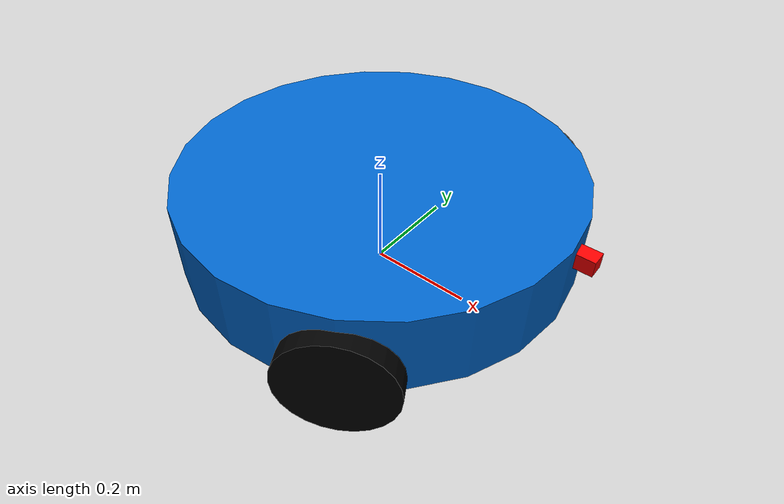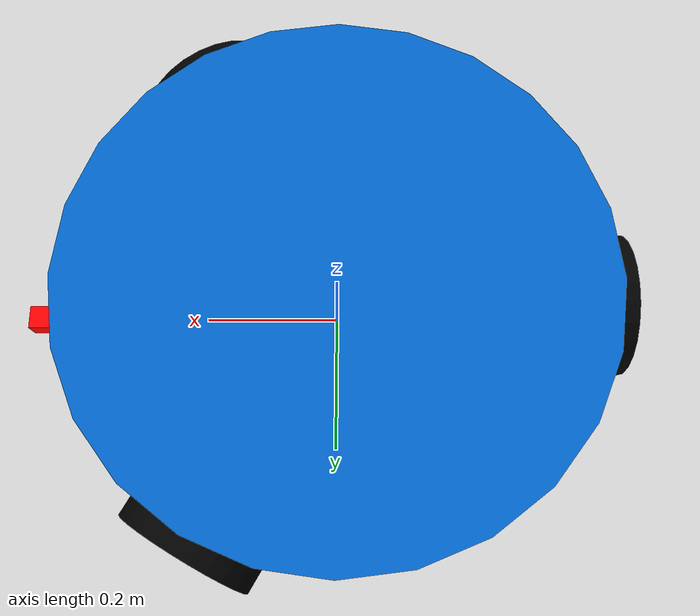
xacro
<?xml version="1.0"?>
<robot xmlns:xacro="http://www.ros.org/wiki/xacro" name="omnibot">

  <!-- This is the main URDF file that calls on all of our URDF components -->
  <!-- Global Color Definitions -->
  <material name="blue">
    <color rgba="0.0 0.4 0.8 1.0" />
  </material>
  <material name="red">
    <color rgba="1.0 0.0 0.0 0.0" />
  </material>

  <material name="black">
    <color rgba="0.0 0.0 0.0 1.0" />
  </material>

  <!-- Include statements to inject all of our URDF components -->
  <xacro:include filename="$(find omnibot_description)/urdf/mech/inertials.urdf.xacro" />
  <xacro:include filename="$(find omnibot_description)/urdf/mech/omnibot_base.urdf.xacro" />
  <xacro:include filename="$(find omnibot_description)/urdf/sensors/lidar.urdf.xacro" />
  <xacro:include filename="$(find omnibot_description)/urdf/sensors/camera.urdf.xacro" />
  <xacro:include filename="$(find omnibot_description)/urdf/control/ros2_control.urdf.xacro" />
  <xacro:include filename="$(find omnibot_description)/urdf/control/gazebo_plugin.urdf.xacro" />

</robot>

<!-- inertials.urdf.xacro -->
<robot xmlns:xacro="http://www.ros.org/wiki/xacro">

    <!-- Reusable macro for momnet of inertial for cylinder. Utilized on the wheels and base of omnibot. -->
    <xacro:macro name="inertial_cylinder" params="mass length radius *origin">
        <inertial>
            <xacro:insert_block name="origin" />
            <mass value="${mass}" />
            <inertia
                ixx="${(1/12) * mass * (3*radius*radius + length*length)}"
                ixy="0.0"
                ixz="0.0"
                iyy="${(1/12) * mass * (3*radius*radius + length*length)}"
                iyz="0.0"
                izz="${(1/2) * mass * radius * radius}" />
        </inertial>
    </xacro:macro>

</robot>

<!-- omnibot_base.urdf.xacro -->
<robot xmlns:xacro="http://www.ros.org/wiki/xacro">

    <xacro:include filename="omni_wheel.urdf.xacro" />

    <!-- Rough Robot size estimates, eventually replaced with CAD dimensions later. -->
    <xacro:property name="base_mass" value="8.0" />
    <xacro:property name="base_radius" value="0.381" />
    <xacro:property name="base_height" value="0.1524" />
    <xacro:property name="ground_offset" value="0.15" />

    <!-- Ground reference frame used by navigation and other ROS tools. -->
    <link name="base_footprint" />

    <!-- Raises the chassis above the ground reference -->
    <joint name="base_footprint_joint" type="fixed">
        <parent link="base_footprint" />
        <child link="base_link" />
        <origin xyz="0.0 0.0 ${ground_offset}" rpy="0 0 0" />
    </joint>

    <link name="base_link">
        <!-- Visual Cylinder of bot -->
        <visual>
            <origin xyz="0 0 0" rpy="0 0 0" />
            <geometry>
                <cylinder radius="${base_radius}" length="${base_height}" />
            </geometry>
            <material name="blue" />
        </visual>

        <collision>
            <origin xyz="0 0 0" rpy="0 0 0" />
            <geometry>
                <cylinder radius="${base_radius}" length="${base_height}" />
            </geometry>
        </collision>

        <!-- Inertia of bot is an estimate update the mass and dimensions from CAD later. -->
        <xacro:inertial_cylinder mass="${base_mass}" length="${base_height}" radius="${base_radius}">
            <origin xyz="0 0 0" rpy="0 0 0" />
        </xacro:inertial_cylinder>
    </link>

    <!-- Three wheels spaced around the chassis -->
    <xacro:omni_wheel suffix="1" parent="base_link" x="${base_radius / 2}"
        y="${base_radius * 0.866025}" yaw="2.618" />

    <xacro:omni_wheel suffix="2" parent="base_link" x="${base_radius / 2}"
        y="${-base_radius * 0.866025}" yaw="0.524" />

    <xacro:omni_wheel suffix="3" parent="base_link" x="-${base_radius}"
        y="0.0" yaw="1.5708" />

</robot>

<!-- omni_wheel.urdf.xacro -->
<robot xmlns:xacro="http://www.ros.org/wiki/xacro">
    <!-- TODO PARAMTERIZE MORE OF THE MEASUREMENTS -->

    <!-- Reusable wheel link and joint. Dimensions are placeholders until CAD is ready. -->
    <!-- This macro can be reused by putting using the line below in the base of the robot -->

    <xacro:macro name="omni_wheel" params="suffix parent x y yaw">
        <xacro:property name="wheel_mass" value="0.5" />
        <xacro:property name="wheel_radius" value="0.1016" />
        <xacro:property name="wheel_length" value="0.0508" />

        <joint name="omni_wheel_joint_${suffix}" type="continuous">
            <parent link="${parent}" />
            <child link="omni_wheel_link_${suffix}" />
            <!-- Defining center of the wheel's joint -->
            <origin xyz="${x} ${y} -.05" rpy="0 0 ${yaw}" />
            <!-- The wheel spins around this axis. -->
            <axis xyz="0 1 0" />
        </joint>

        <link name="omni_wheel_link_${suffix}">
            <visual>
                <!-- URDF cylinders use local Z as their length axis rotate it to align the axle with Y. -->
                <origin xyz="0 0 0" rpy="1.5708 0 0" />
                <geometry>
                    <cylinder radius="${wheel_radius}" length="${wheel_length}" />
                </geometry>
                <material name="black" />
            </visual>

            <collision>
                <origin xyz="0 0 0" rpy="1.5708 0 0" />
                <geometry>
                    <cylinder radius="${wheel_radius}" length="${wheel_length}" />
                </geometry>
            </collision>

            <!-- Cylinder estimate, replace with measured values when the wheel is finalized. -->
            <xacro:inertial_cylinder mass="${wheel_mass}" length="${wheel_length}" radius="${wheel_radius}">
                <origin xyz="0 0 0" rpy="1.5708 0 0" />
            </xacro:inertial_cylinder>

        </link>

    </xacro:macro>

</robot>

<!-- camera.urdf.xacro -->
<robot xmlns:xacro="http://www.ros.org/wiki/xacro">

    <joint name="camera_joint" type="fixed">
        <parent link="base_link" />
        <child link="camera_link" />
        <origin xyz="0.385 0.05 0.03" rpy="0.0 0.0 0.0" />
    </joint>

    <link name="camera_link">
        <visual>
            <geometry>
                <box size="0.05 0.03 0.03" />
            </geometry>
            <material name="red" />
        </visual>
    </link>

    <joint name="camera_optical_joint" type="fixed">
        <parent link="camera_link" />
        <child link="camera_optical_link" />
        <origin xyz="0 0 0" rpy="${-pi/2} 0 ${-pi/2}" />
    </joint>

    <link name="camera_optical_link"></link>

    <!-- These tags actually make it so we can see what the gazebo entity sees on the camera topic. -->
    <gazebo reference="camera_link">
        <material>Gazebo/Red</material>
        <sensor name="camera" type="camera">
            <pose> 0 0 0 0 0 0</pose>
            <visualize>true</visualize>
            <update_rate>10</update_rate>
            <camera>
                <horizontal_fov>1.089</horizontal_fov>
                <image>
                    <format>R8G8B8</format>
                    <width>640</width>
                    <height>480</height>
                </image>
                <!-- Sees as close as .05 meters and as far as 8 meters -->
                <clip>
                    <near>0.05</near>
                    <far>8.0</far>
                </clip>
            </camera>
            <topic>camera/image_raw</topic>
            <gz_frame_id>camera_link_optical</gz_frame_id>
        </sensor>
    </gazebo>

</robot>
